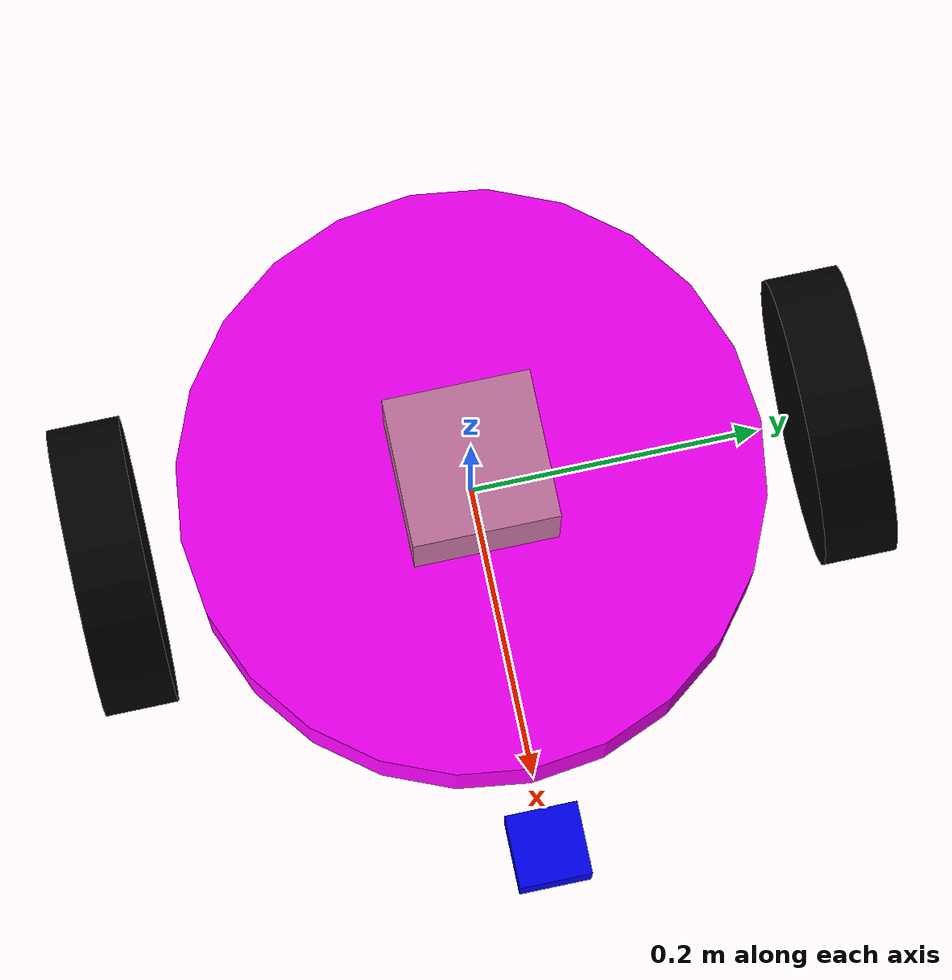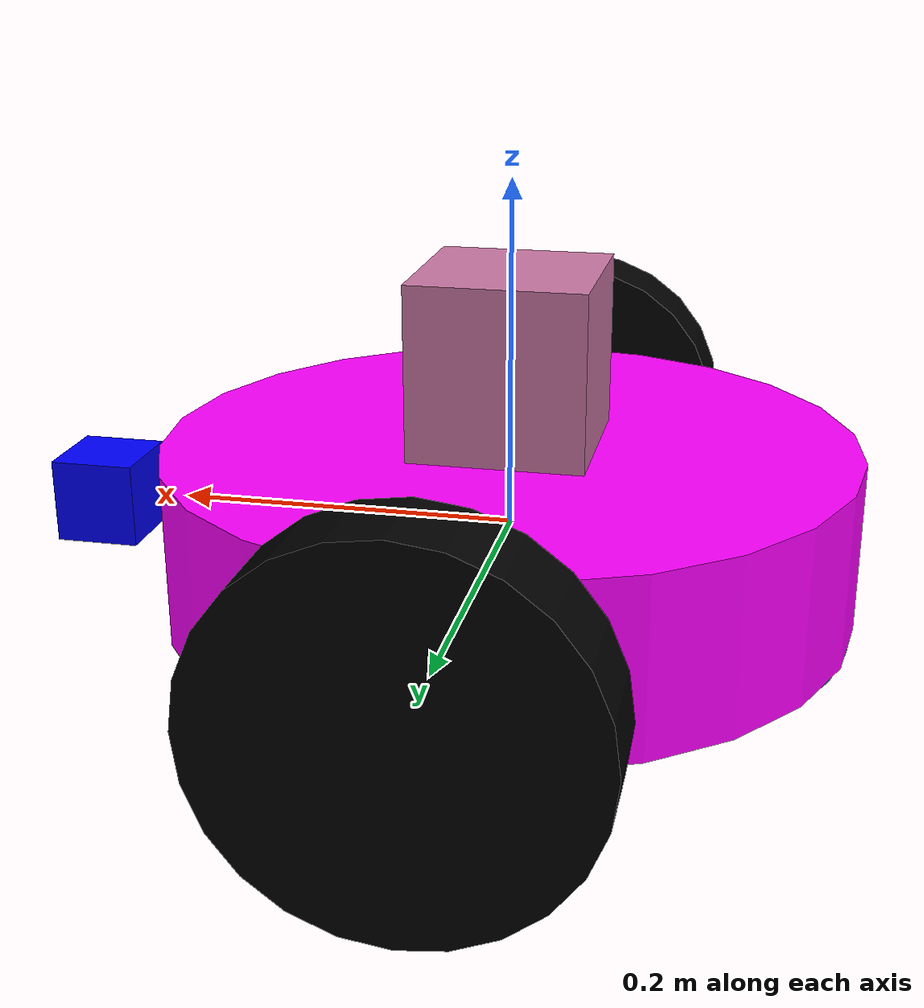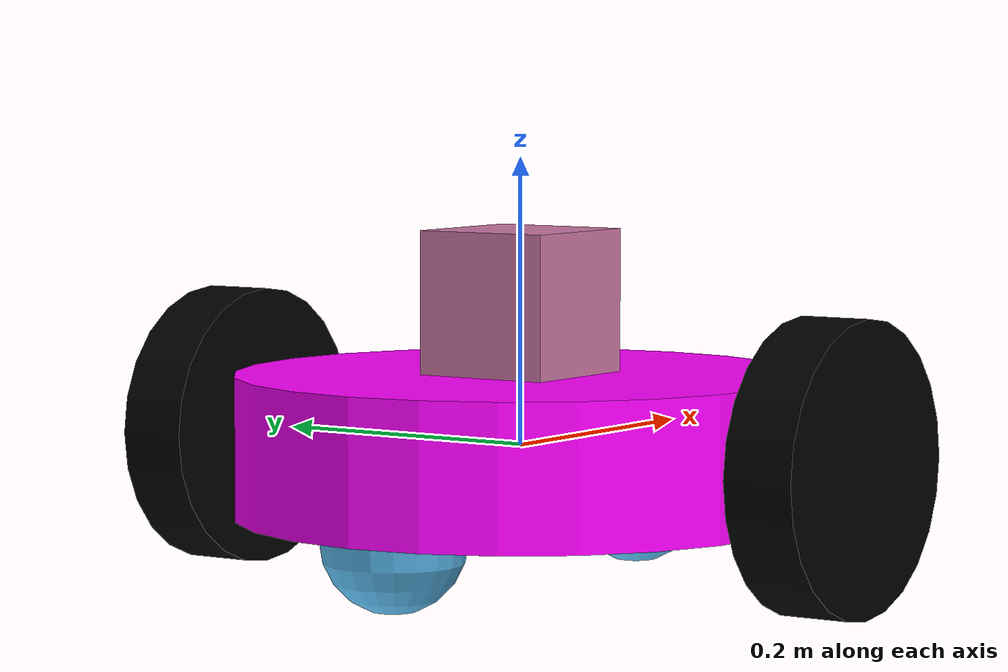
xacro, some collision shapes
<?xml version='1.0'?>
<!-- srijith_bot -->

<robot name="srijith_bot" xmlns:xacro="http://www.ros.org/wiki/xacro">
  <xacro:include filename="$(find slam_project)/urdf/srijith_bot.gazebo"/>
  <link name="robot_footprint"></link>

  <joint name="robot_footprint_joint" type="fixed">
    <origin xyz="0 0 0" rpy="0 0 0" />
    <parent link="robot_footprint"/>
    <child link="chassis" />
  </joint>

  <!-- Chassis Link -->
  <link name='chassis'>
    <pose>0 0 0.1 0 0 0</pose>

    <inertial>
      <mass value="10.0"/>
      <origin xyz="0.0 0 0" rpy=" 0 0 0"/>
      <inertia
          ixx="0.05" ixy="0" ixz="0"
          iyy="0.05" iyz="0"
          izz="0.05"
      />
    </inertial>

    <collision name='collision'>
      <origin xyz="0 0 0" rpy=" 0 0 0"/>
      <geometry>
        <cylinder radius="0.2" length="0.1"/>
      </geometry>
    </collision>

    <visual name='chassis_visual'>
      <origin xyz="0 0 0" rpy=" 0 0 0"/>
      <geometry>
        <cylinder radius="0.2" length="0.1"/>
      </geometry>
      <material name="magenta">
        <color rgba="1 0 1 1"/>
      </material>
    </visual>

    <collision name='back_caster_collision'>
      <origin xyz="-0.15 0 -0.05" rpy=" 0 0 0"/>
      <geometry>
        <sphere radius="0.0499"/>
      </geometry>
      <surface>
        <friction>
          <ode>
            <mu>0</mu>
            <mu2>0</mu2>
            <slip1>1.0</slip1>
            <slip2>1.0</slip2>
          </ode>
        </friction>
      </surface>
    </collision>

    <visual name='back_caster_visual'>
      <origin xyz="-0.15 0 -0.05" rpy=" 0 0 0"/>
      <geometry>
        <sphere radius="0.0499"/>
      </geometry>
    </visual>

    <collision name='front_caster_collision'>
      <origin xyz="0.15 0 -0.05" rpy=" 0 0 0"/>
      <geometry>
        <sphere radius="0.0499"/>
      </geometry>
      <surface>
        <friction>
          <ode>
            <mu>0</mu>
            <mu2>0</mu2>
            <slip1>1.0</slip1>
            <slip2>1.0</slip2>
          </ode>
        </friction>
      </surface>
    </collision>

    <visual name='front_caster_visual'>
      <origin xyz="0.15 0 -0.05" rpy=" 0 0 0"/>
      <geometry>
        <sphere radius="0.0499"/>
      </geometry>
    </visual>

  </link>

  <!-- Left Wheel Link -->

  <link name="left_wheel">

    <inertial>
      <mass value="2.5"/>
      <origin xyz="0 0 0" rpy="0 1.5707 1.5707"/>
      <inertia
          ixx="0.1" ixy="0" ixz="0"
          iyy="0.1" iyz="0"
          izz="0.1"
      />
    </inertial>
    <visual>
      <geometry>
        <cylinder length="0.05" radius="0.1"/>
      </geometry>
      <origin xyz="0 0 0" rpy="0 1.5707 1.5707"/>
      <material name="black">
        <color rgba="0 0 0 1"/>
      </material>
    </visual>
    <collision>
      <geometry>
        <cylinder length="0.05" radius="0.1"/>
      </geometry>
      <origin xyz="0 0 0" rpy="0 1.5707 1.5707"/>
    </collision>
  </link>

  <!-- Right Wheel Link -->

  <link name="right_wheel">

    <inertial>
      <mass value="2.5"/>
      <origin xyz="0 0 0" rpy="0 1.5707 1.5707"/>
      <inertia
          ixx="0.1" ixy="0" ixz="0"
          iyy="0.1" iyz="0"
          izz="0.1"
      />
    </inertial>
    <visual>
      <geometry>
        <cylinder length="0.05" radius="0.1"/>
      </geometry>
      <origin xyz="0 0 0" rpy="0 1.5707 1.5707"/>
      <material name="black">
        <color rgba="0 0 0 1"/>
      </material>
    </visual>
    <collision>
      <geometry>
        <cylinder length="0.05" radius="0.1"/>
      </geometry>
      <origin xyz="0 0 0" rpy="0 1.5707 1.5707"/>
    </collision>
  </link>

  <!-- Camera Link -->

  <link name="camera">

    <inertial>
      <mass value="0.1"/>
      <origin xyz="0 0 0" rpy="0 0 0"/>
      <inertia
          ixx="1e-6" ixy="0" ixz="0"
          iyy="1e-6" iyz="0"
          izz="1e-6"
      />
    </inertial>
    <visual>
      <geometry>
        <box size="0.05 0.05 0.05"/>
      </geometry>
      <origin xyz="0 0 0" rpy="0 0 0"/>
      <material name="blue">
        <color rgba="0 0 1 1"/>
      </material>
    </visual>
    <collision>
      <geometry>
        <box size="0.05 0.05 0.05"/>
      </geometry>
      <origin xyz="0 0 0" rpy="0 0 0"/>
    </collision>
  </link>

  <!-- Camera RGB-D Link -->

  <link name="camera_rgbd_frame"></link>

  <!-- Hokuyo Link -->

  <link name="hokuyo">

    <inertial>
      <mass value="0.1"/>
      <origin xyz="0 0 0" rpy="0 0 0"/>
      <inertia
          ixx="1e-6" ixy="0" ixz="0"
          iyy="1e-6" iyz="0"
          izz="1e-6"
      />
    </inertial>
    <visual>
      <geometry>
        <mesh filename="package://srijith_bot/meshes/hokuyo.dae"/>
      </geometry>
      <origin xyz="0 0 0" rpy="0 0 0"/>
    </visual>
    <collision>
      <geometry>
        <box size="0.1 0.1 0.1"/>
      </geometry>
      <origin xyz="0 0 0" rpy="0 0 0"/>
    </collision>
  </link>

  <!-- Joints -->

  <joint type="continuous" name="left_wheel_hinge">
    <origin xyz="0 0.25 0" rpy="0 0 0"/>
    <child link="left_wheel"/>
    <parent link="chassis"/>
    <axis xyz="0 1 0" rpy="0 0 0"/>
    <limit effort="10000" velocity="1000"/>
    <joint_properties damping="1.0" friction="1.0"/>
  </joint>

  <joint type="continuous" name="right_wheel_hinge">
    <origin xyz="0 -0.25 0" rpy="0 0 0"/>
    <child link="right_wheel"/>
    <parent link="chassis"/>
    <axis xyz="0 1 0" rpy="0 0 0"/>
    <limit effort="10000" velocity="1000"/>
    <joint_properties damping="1.0" friction="1.0"/>
  </joint>

  <joint name="camera_rgbd_joint" type="fixed">
    <origin xyz="0 0 0" rpy="-${pi/2} 0 -${pi/2}"/>
    <parent link="camera"/>
    <child link="camera_rgbd_frame"/>
  </joint>

  <joint type="fixed" name="camera_joint">
    <origin xyz="0.25 0 0" rpy="0 0 0"/>
    <child link="camera"/>
    <parent link="chassis"/>
  </joint>

  <joint type="fixed" name="hokuyo_joint">
    <origin xyz="0.0 0 0.1" rpy="0 0 0"/>
    <child link="hokuyo"/>
    <parent link="chassis"/>
  </joint>

</robot>
